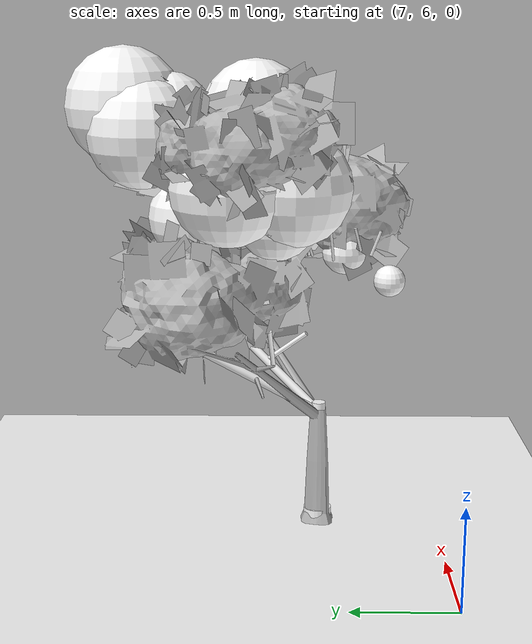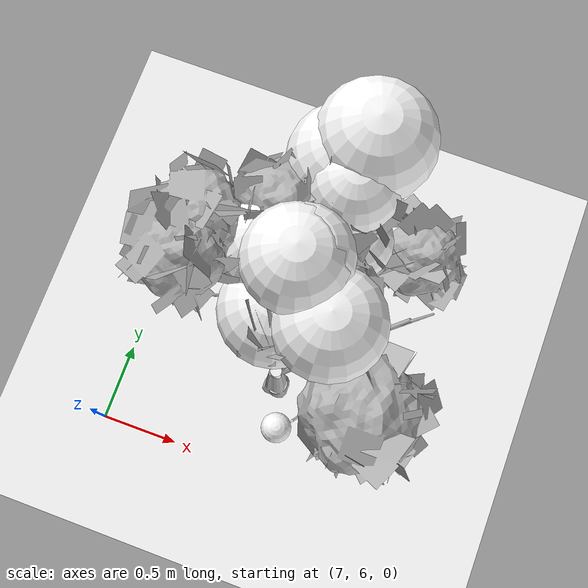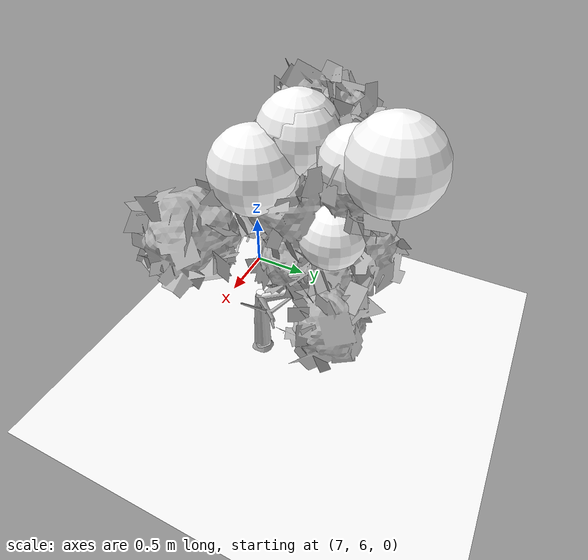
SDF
<sdf version="1.11">
 <world name="peach_orchard">
  <model name="ground">
   <static>true</static>
   <link name="link">
    <visual name="soil">
     <geometry><plane><normal>0 0 1</normal><size>32 22</size></plane></geometry>
     <material>
      <ambient>1 1 1 1</ambient>
      <diffuse>1 1 1 1</diffuse>
      <specular>0.1 0.1 0.1 1</specular>
      <pbr>
       <metal>
        <albedo_map>textures/soil_albedo.png</albedo_map>
        <normal_map type="tangent">textures/soil_normal.png</normal_map>
        <roughness>0.95</roughness>
        <metalness>0</metalness>
       </metal>
      </pbr>
     </material>
    </visual>
    <collision name="c_soil">
     <geometry><plane><normal>0 0 1</normal><size>32 22</size></plane></geometry>
    </collision>
   </link>
  </model>
  <model name="tree_r4_t6">
   <pose>8 6.6 0 0 0 0</pose>
   <static>true</static>
   <link name="link">
    <visual name="tree_mesh">
     <pose>0 0 0 0 0 -0.0943012</pose>
     <geometry>
      <mesh><uri>model://peach_sim/meshes/peach_tree_a.glb</uri><scale>1.05321 1.05321 1.05321</scale></mesh>
     </geometry>
    </visual>
    <visual name="trunk_0">
     <pose>0 0 0.176851 0 0 0</pose>
     <geometry><cylinder><radius>0.0488585</radius><length>0.353702</length></cylinder></geometry>
     <material>
      <ambient>1 1 1 1</ambient>
      <diffuse>1 1 1 1</diffuse>
      <specular>0.1 0.1 0.1 1</specular>
      <pbr>
       <metal>
        <albedo_map>textures/bark_albedo.png</albedo_map>
        <normal_map type="tangent">textures/bark_normal.png</normal_map>
        <roughness>0.9</roughness>
        <metalness>0</metalness>
       </metal>
      </pbr>
     </material>
    </visual>
    <collision name="c_trunk_0">
     <pose>0 0 0.176851 0 0 0</pose>
     <geometry><cylinder><radius>0.0488585</radius><length>0.353702</length></cylinder></geometry>
    </collision>
    <visual name="trunk_1">
     <pose>0 0 0.498398 0 0 0</pose>
     <geometry><cylinder><radius>0.0351782</radius><length>0.289392</length></cylinder></geometry>
     <material>
      <ambient>1 1 1 1</ambient>
      <diffuse>1 1 1 1</diffuse>
      <specular>0.1 0.1 0.1 1</specular>
      <pbr>
       <metal>
        <albedo_map>textures/bark_albedo.png</albedo_map>
        <normal_map type="tangent">textures/bark_normal.png</normal_map>
        <roughness>0.9</roughness>
        <metalness>0</metalness>
       </metal>
      </pbr>
     </material>
    </visual>
    <collision name="c_trunk_1">
     <pose>0 0 0.498398 0 0 0</pose>
     <geometry><cylinder><radius>0.0351782</radius><length>0.289392</length></cylinder></geometry>
    </collision>
    <visual name="root_flare">
     <pose>0 0 0.035 0 0 0</pose>
     <geometry><cylinder><radius>0.0708449</radius><length>0.07</length></cylinder></geometry>
     <material>
      <ambient>1 1 1 1</ambient>
      <diffuse>1 1 1 1</diffuse>
      <specular>0.1 0.1 0.1 1</specular>
      <pbr>
       <metal>
        <albedo_map>textures/bark_albedo.png</albedo_map>
        <normal_map type="tangent">textures/bark_normal.png</normal_map>
        <roughness>0.95</roughness>
        <metalness>0</metalness>
       </metal>
      </pbr>
     </material>
    </visual>
    <visual name="scaffold_0">
     <pose>-0.0490322 0.356764 0.799667 0 1.04698 1.70738</pose>
     <geometry><cylinder><radius>0.022</radius><length>0.831763</length></cylinder></geometry>
     <material>
      <ambient>1 1 1 1</ambient>
      <diffuse>1 1 1 1</diffuse>
      <specular>0.1 0.1 0.1 1</specular>
      <pbr>
       <metal>
        <albedo_map>textures/bark_albedo.png</albedo_map>
        <normal_map type="tangent">textures/bark_normal.png</normal_map>
        <roughness>0.9</roughness>
        <metalness>0</metalness>
       </metal>
      </pbr>
     </material>
    </visual>
    <collision name="c_scaffold_0">
     <pose>-0.0490322 0.356764 0.799667 0 1.04698 1.70738</pose>
     <geometry><cylinder><radius>0.022</radius><length>0.831763</length></cylinder></geometry>
    </collision>
    <visual name="branchlet_0_0">
     <pose>-0.186189 0.542387 1.05398 0 0.860834 -2.54835</pose>
     <geometry><cylinder><radius>0.012</radius><length>0.324989</length></cylinder></geometry>
     <material>
      <ambient>1 1 1 1</ambient>
      <diffuse>1 1 1 1</diffuse>
      <specular>0.1 0.1 0.1 1</specular>
      <pbr>
       <metal>
        <albedo_map>textures/bark_albedo.png</albedo_map>
        <normal_map type="tangent">textures/bark_normal.png</normal_map>
        <roughness>0.9</roughness>
        <metalness>0</metalness>
       </metal>
      </pbr>
     </material>
    </visual>
    <visual name="branchlet_0_1">
     <pose>-0.226395 0.600822 1.03825 0 1.08453 -2.89385</pose>
     <geometry><cylinder><radius>0.012</radius><length>0.324326</length></cylinder></geometry>
     <material>
      <ambient>1 1 1 1</ambient>
      <diffuse>1 1 1 1</diffuse>
      <specular>0.1 0.1 0.1 1</specular>
      <pbr>
       <metal>
        <albedo_map>textures/bark_albedo.png</albedo_map>
        <normal_map type="tangent">textures/bark_normal.png</normal_map>
        <roughness>0.9</roughness>
        <metalness>0</metalness>
       </metal>
      </pbr>
     </material>
    </visual>
    <visual name="scaffold_1">
     <pose>0.0786865 0.214184 0.789093 0 0.857481 1.21872</pose>
     <geometry><cylinder><radius>0.022</radius><length>0.603495</length></cylinder></geometry>
     <material>
      <ambient>1 1 1 1</ambient>
      <diffuse>1 1 1 1</diffuse>
      <specular>0.1 0.1 0.1 1</specular>
      <pbr>
       <metal>
        <albedo_map>textures/bark_albedo.png</albedo_map>
        <normal_map type="tangent">textures/bark_normal.png</normal_map>
        <roughness>0.9</roughness>
        <metalness>0</metalness>
       </metal>
      </pbr>
     </material>
    </visual>
    <collision name="c_scaffold_1">
     <pose>0.0786865 0.214184 0.789093 0 0.857481 1.21872</pose>
     <geometry><cylinder><radius>0.022</radius><length>0.603495</length></cylinder></geometry>
    </collision>
    <visual name="branchlet_1_0">
     <pose>-0.0166364 0.241917 0.927444 0 0.690825 3.02923</pose>
     <geometry><cylinder><radius>0.012</radius><length>0.320021</length></cylinder></geometry>
     <material>
      <ambient>1 1 1 1</ambient>
      <diffuse>1 1 1 1</diffuse>
      <specular>0.1 0.1 0.1 1</specular>
      <pbr>
       <metal>
        <albedo_map>textures/bark_albedo.png</albedo_map>
        <normal_map type="tangent">textures/bark_normal.png</normal_map>
        <roughness>0.9</roughness>
        <metalness>0</metalness>
       </metal>
      </pbr>
     </material>
    </visual>
    <visual name="branchlet_1_1">
     <pose>0.0639335 0.165104 0.916806 0 0.914686 -1.89362</pose>
     <geometry><cylinder><radius>0.012</radius><length>0.265525</length></cylinder></geometry>
     <material>
      <ambient>1 1 1 1</ambient>
      <diffuse>1 1 1 1</diffuse>
      <specular>0.1 0.1 0.1 1</specular>
      <pbr>
       <metal>
        <albedo_map>textures/bark_albedo.png</albedo_map>
        <normal_map type="tangent">textures/bark_normal.png</normal_map>
        <roughness>0.9</roughness>
        <metalness>0</metalness>
       </metal>
      </pbr>
     </material>
    </visual>
    <visual name="canopy_0">
     <pose>0.0252337 0.874535 2.01297 0 0 0</pose>
     <geometry><sphere><radius>0.279045</radius></sphere></geometry>
     <material>
      <ambient>1 1 1 1</ambient>
      <diffuse>1 1 1 1</diffuse>
      <specular>0.1 0.1 0.1 1</specular>
      <pbr>
       <metal>
        <albedo_map>textures/leaf_albedo.png</albedo_map>
        <normal_map type="tangent">textures/leaf_normal.png</normal_map>
        <roughness>0.85</roughness>
        <metalness>0</metalness>
       </metal>
      </pbr>
     </material>
    </visual>
    <collision name="c_canopy_0">
     <pose>0.0252337 0.874535 2.01297 0 0 0</pose>
     <geometry><sphere><radius>0.279045</radius></sphere></geometry>
    </collision>
    <visual name="canopy_1">
     <pose>0.120424 0.74871 2.07585 0 0 0</pose>
     <geometry><sphere><radius>0.225471</radius></sphere></geometry>
     <material>
      <ambient>1 1 1 1</ambient>
      <diffuse>1 1 1 1</diffuse>
      <specular>0.1 0.1 0.1 1</specular>
      <pbr>
       <metal>
        <albedo_map>textures/leaf_albedo.png</albedo_map>
        <normal_map type="tangent">textures/leaf_normal.png</normal_map>
        <roughness>0.85</roughness>
        <metalness>0</metalness>
       </metal>
      </pbr>
     </material>
    </visual>
    <collision name="c_canopy_1">
     <pose>0.120424 0.74871 2.07585 0 0 0</pose>
     <geometry><sphere><radius>0.225471</radius></sphere></geometry>
    </collision>
    <visual name="canopy_2">
     <pose>0.139823 0.971328 2.13023 0 0 0</pose>
     <geometry><sphere><radius>0.297863</radius></sphere></geometry>
     <material>
      <ambient>1 1 1 1</ambient>
      <diffuse>1 1 1 1</diffuse>
      <specular>0.1 0.1 0.1 1</specular>
      <pbr>
       <metal>
        <albedo_map>textures/leaf_albedo.png</albedo_map>
        <normal_map type="tangent">textures/leaf_normal.png</normal_map>
        <roughness>0.85</roughness>
        <metalness>0</metalness>
       </metal>
      </pbr>
     </material>
    </visual>
    <collision name="c_canopy_2">
     <pose>0.139823 0.971328 2.13023 0 0 0</pose>
     <geometry><sphere><radius>0.297863</radius></sphere></geometry>
    </collision>
    <visual name="canopy_3">
     <pose>0.224844 0.131793 1.92174 0 0 0</pose>
     <geometry><sphere><radius>0.286481</radius></sphere></geometry>
     <material>
      <ambient>1 1 1 1</ambient>
      <diffuse>1 1 1 1</diffuse>
      <specular>0.1 0.1 0.1 1</specular>
      <pbr>
       <metal>
        <albedo_map>textures/leaf_albedo.png</albedo_map>
        <normal_map type="tangent">textures/leaf_normal.png</normal_map>
        <roughness>0.85</roughness>
        <metalness>0</metalness>
       </metal>
      </pbr>
     </material>
    </visual>
    <visual name="canopy_4">
     <pose>-0.188733 0.393208 1.90978 0 0 0</pose>
     <geometry><sphere><radius>0.248172</radius></sphere></geometry>
     <material>
      <ambient>1 1 1 1</ambient>
      <diffuse>1 1 1 1</diffuse>
      <specular>0.1 0.1 0.1 1</specular>
      <pbr>
       <metal>
        <albedo_map>textures/leaf_albedo.png</albedo_map>
        <normal_map type="tangent">textures/leaf_normal.png</normal_map>
        <roughness>0.85</roughness>
        <metalness>0</metalness>
       </metal>
      </pbr>
     </material>
    </visual>
    <visual name="canopy_5">
     <pose>-0.0476004 0.132612 1.74885 0 0 0</pose>
     <geometry><sphere><radius>0.287583</radius></sphere></geometry>
     <material>
      <ambient>1 1 1 1</ambient>
      <diffuse>1 1 1 1</diffuse>
      <specular>0.1 0.1 0.1 1</specular>
      <pbr>
       <metal>
        <albedo_map>textures/leaf_albedo.png</albedo_map>
        <normal_map type="tangent">textures/leaf_normal.png</normal_map>
        <roughness>0.85</roughness>
        <metalness>0</metalness>
       </metal>
      </pbr>
     </material>
    </visual>
    <visual name="canopy_6">
     <pose>-0.0103222 0.318826 2.10785 0 0 0</pose>
     <geometry><sphere><radius>0.264623</radius></sphere></geometry>
     <material>
      <ambient>1 1 1 1</ambient>
      <diffuse>1 1 1 1</diffuse>
      <specular>0.1 0.1 0.1 1</specular>
      <pbr>
       <metal>
        <albedo_map>textures/leaf_albedo.png</albedo_map>
        <normal_map type="tangent">textures/leaf_normal.png</normal_map>
        <roughness>0.85</roughness>
        <metalness>0</metalness>
       </metal>
      </pbr>
     </material>
    </visual>
    <visual name="canopy_7">
     <pose>0.18253 0.652533 1.56848 0 0 0</pose>
     <geometry><sphere><radius>0.217348</radius></sphere></geometry>
     <material>
      <ambient>1 1 1 1</ambient>
      <diffuse>1 1 1 1</diffuse>
      <specular>0.1 0.1 0.1 1</specular>
      <pbr>
       <metal>
        <albedo_map>textures/leaf_albedo.png</albedo_map>
        <normal_map type="tangent">textures/leaf_normal.png</normal_map>
        <roughness>0.85</roughness>
        <metalness>0</metalness>
       </metal>
      </pbr>
     </material>
    </visual>
    <visual name="canopy_8">
     <pose>-0.141054 0.453684 1.76588 0 0 0</pose>
     <geometry><sphere><radius>0.288959</radius></sphere></geometry>
     <material>
      <ambient>1 1 1 1</ambient>
      <diffuse>1 1 1 1</diffuse>
      <specular>0.1 0.1 0.1 1</specular>
      <pbr>
       <metal>
        <albedo_map>textures/leaf_albedo.png</albedo_map>
        <normal_map type="tangent">textures/leaf_normal.png</normal_map>
        <roughness>0.85</roughness>
        <metalness>0</metalness>
       </metal>
      </pbr>
     </material>
    </visual>
    <visual name="canopy_9">
     <pose>0.0129861 0.345804 2.10547 0 0 0</pose>
     <geometry><sphere><radius>0.245965</radius></sphere></geometry>
     <material>
      <ambient>1 1 1 1</ambient>
      <diffuse>1 1 1 1</diffuse>
      <specular>0.1 0.1 0.1 1</specular>
      <pbr>
       <metal>
        <albedo_map>textures/leaf_albedo.png</albedo_map>
        <normal_map type="tangent">textures/leaf_normal.png</normal_map>
        <roughness>0.85</roughness>
        <metalness>0</metalness>
       </metal>
      </pbr>
     </material>
    </visual>
    <visual name="canopy_10">
     <pose>0.00306998 0.219661 1.58508 0 0 0</pose>
     <geometry><sphere><radius>0.202821</radius></sphere></geometry>
     <material>
      <ambient>1 1 1 1</ambient>
      <diffuse>1 1 1 1</diffuse>
      <specular>0.1 0.1 0.1 1</specular>
      <pbr>
       <metal>
        <albedo_map>textures/leaf_albedo.png</albedo_map>
        <normal_map type="tangent">textures/leaf_normal.png</normal_map>
        <roughness>0.85</roughness>
        <metalness>0</metalness>
       </metal>
      </pbr>
     </material>
    </visual>
    <visual name="foliage_0">
     <pose>0.428515 -0.145801 1.33625 0 0 0</pose>
     <geometry><sphere><radius>0.117422</radius></sphere></geometry>
     <material>
      <ambient>1 1 1 1</ambient>
      <diffuse>1 1 1 1</diffuse>
      <specular>0.1 0.1 0.1 1</specular>
      <pbr>
       <metal>
        <albedo_map>textures/leaf_albedo.png</albedo_map>
        <normal_map type="tangent">textures/leaf_normal.png</normal_map>
        <roughness>0.85</roughness>
        <metalness>0</metalness>
       </metal>
      </pbr>
     </material>
    </visual>
    <visual name="foliage_4">
     <pose>0.1384 -0.35932 1.24645 0 0 0</pose>
     <geometry><sphere><radius>0.0808462</radius></sphere></geometry>
     <material>
      <ambient>1 1 1 1</ambient>
      <diffuse>1 1 1 1</diffuse>
      <specular>0.1 0.1 0.1 1</specular>
      <pbr>
       <metal>
        <albedo_map>textures/leaf_albedo.png</albedo_map>
        <normal_map type="tangent">textures/leaf_normal.png</normal_map>
        <roughness>0.85</roughness>
        <metalness>0</metalness>
       </metal>
      </pbr>
     </material>
    </visual>
    <visual name="twig_0">
     <pose>0.38798 -0.217594 1.49703 0 0.400533 2.39812</pose>
     <geometry><cylinder><radius>0.007</radius><length>0.164993</length></cylinder></geometry>
     <material>
      <ambient>1 1 1 1</ambient>
      <diffuse>1 1 1 1</diffuse>
      <specular>0.1 0.1 0.1 1</specular>
      <pbr>
       <metal>
        <albedo_map>textures/bark_albedo.png</albedo_map>
        <normal_map type="tangent">textures/bark_normal.png</normal_map>
        <roughness>0.9</roughness>
        <metalness>0</metalness>
       </metal>
      </pbr>
     </material>
    </visual>
    <visual name="twig_1">
     <pose>0.275657 0.0601314 1.43616 0 0.483524 2.43778</pose>
     <geometry><cylinder><radius>0.007</radius><length>0.218617</length></cylinder></geometry>
     <material>
      <ambient>1 1 1 1</ambient>
      <diffuse>1 1 1 1</diffuse>
      <specular>0.1 0.1 0.1 1</specular>
      <pbr>
       <metal>
        <albedo_map>textures/bark_albedo.png</albedo_map>
        <normal_map type="tangent">textures/bark_normal.png</normal_map>
        <roughness>0.9</roughness>
        <metalness>0</metalness>
       </metal>
      </pbr>
     </material>
    </visual>
    <visual name="twig_2">
     <pose>0.29734 0.0433424 1.40702 0 0.667226 -3.10633</pose>
     <geometry><cylinder><radius>0.007</radius><length>0.181786</length></cylinder></geometry>
     <material>
      <ambient>1 1 1 1</ambient>
      <diffuse>1 1 1 1</diffuse>
      <specular>0.1 0.1 0.1 1</specular>
      <pbr>
       <metal>
        <albedo_map>textures/bark_albedo.png</albedo_map>
        <normal_map type="tangent">textures/bark_normal.png</normal_map>
        <roughness>0.9</roughness>
        <metalness>0</metalness>
       </metal>
      </pbr>
     </material>
    </visual>
    <visual name="twig_3">
     <pose>0.255775 0.186704 1.44062 0 0.350811 -2.92393</pose>
     <geometry><cylinder><radius>0.007</radius><length>0.196129</length></cylinder></geometry>
     <material>
      <ambient>1 1 1 1</ambient>
      <diffuse>1 1 1 1</diffuse>
      <specular>0.1 0.1 0.1 1</specular>
      <pbr>
       <metal>
        <albedo_map>textures/bark_albedo.png</albedo_map>
        <normal_map type="tangent">textures/bark_normal.png</normal_map>
        <roughness>0.9</roughness>
        <metalness>0</metalness>
       </metal>
      </pbr>
     </material>
    </visual>
    <visual name="twig_4">
     <pose>0.222105 -0.294169 1.42534 0 0.37114 -2.04112</pose>
     <geometry><cylinder><radius>0.007</radius><length>0.144563</length></cylinder></geometry>
     <material>
      <ambient>1 1 1 1</ambient>
      <diffuse>1 1 1 1</diffuse>
      <specular>0.1 0.1 0.1 1</specular>
      <pbr>
       <metal>
        <albedo_map>textures/bark_albedo.png</albedo_map>
        <normal_map type="tangent">textures/bark_normal.png</normal_map>
        <roughness>0.9</roughness>
        <metalness>0</metalness>
       </metal>
      </pbr>
     </material>
    </visual>
    <visual name="twig_5">
     <pose>0.21641 -0.202463 1.44398 0 0.342862 2.30299</pose>
     <geometry><cylinder><radius>0.007</radius><length>0.129574</length></cylinder></geometry>
     <material>
      <ambient>1 1 1 1</ambient>
      <diffuse>1 1 1 1</diffuse>
      <specular>0.1 0.1 0.1 1</specular>
      <pbr>
       <metal>
        <albedo_map>textures/bark_albedo.png</albedo_map>
        <normal_map type="tangent">textures/bark_normal.png</normal_map>
        <roughness>0.9</roughness>
        <metalness>0</metalness>
       </metal>
      </pbr>
     </material>
    </visual>
    <visual name="twig_6">
     <pose>0.197159 -0.0678258 1.41982 0 0.333412 2.8107</pose>
     <geometry><cylinder><radius>0.007</radius><length>0.180859</length></cylinder></geometry>
     <material>
      <ambient>1 1 1 1</ambient>
      <diffuse>1 1 1 1</diffuse>
      <specular>0.1 0.1 0.1 1</specular>
      <pbr>
       <metal>
        <albedo_map>textures/bark_albedo.png</albedo_map>
        <normal_map type="tangent">textures/bark_normal.png</normal_map>
        <roughness>0.9</roughness>
        <metalness>0</metalness>
       </metal>
      </pbr>
     </material>
    </visual>
    <visual name="twig_7">
     <pose>0.21908 0.0758815 1.40846 0 0.442549 2.6395</pose>
     <geometry><cylinder><radius>0.007</radius><length>0.118076</length></cylinder></geometry>
     <material>
      <ambient>1 1 1 1</ambient>
      <diffuse>1 1 1 1</diffuse>
      <specular>0.1 0.1 0.1 1</specular>
      <pbr>
       <metal>
        <albedo_map>textures/bark_albedo.png</albedo_map>
        <normal_map type="tangent">textures/bark_normal.png</normal_map>
        <roughness>0.9</roughness>
        <metalness>0</metalness>
       </metal>
      </pbr>
     </material>
    </visual>
   </link>
  </model>
 </world>
</sdf>
